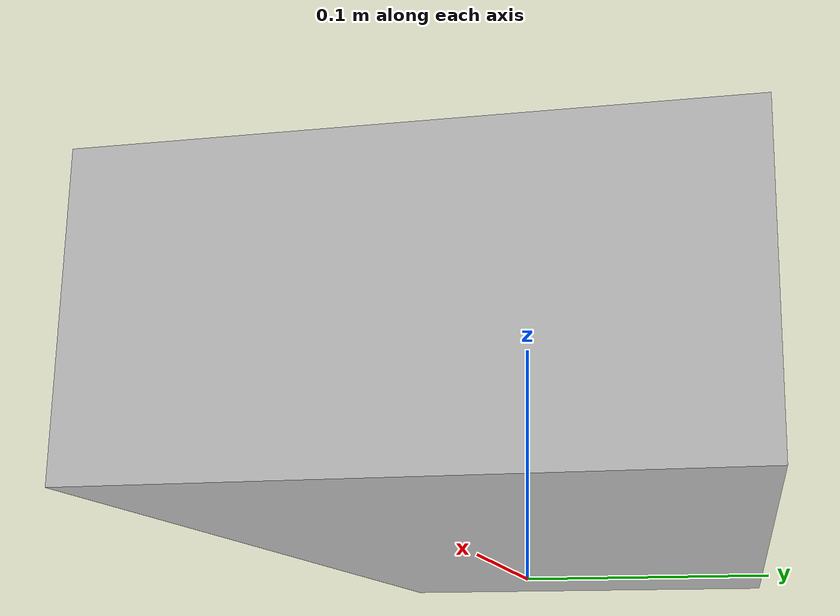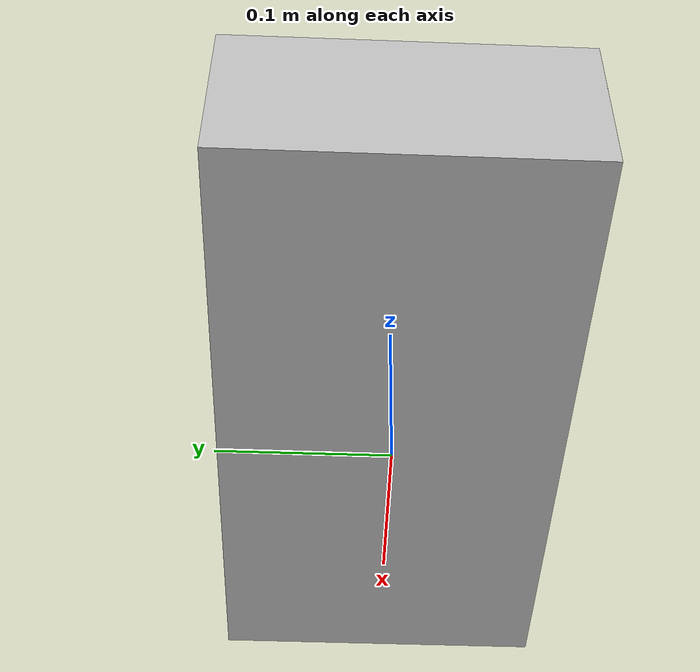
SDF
<?xml version='1.0'?>
<sdf version='1.4'>
  <model name="mobile_hagen_robot">
     <static>true</static>
       <link name='chassis'>
         <pose>0 0 .04 0 0 0</pose>
           <collision name='collision'>
             <geometry>
               <box>
                 <size>.5 .3 .2</size>
               </box>
             </geometry>
           </collision>
           <visual name='visual'>
             <pose> 0 0 0.02 0 0 0 </pose>
             <geometry>
               <box>
                 <size>.4 .2 .1</size>
               </box>
             </geometry>
           </visual>
      </link>
  </model>
</sdf>
